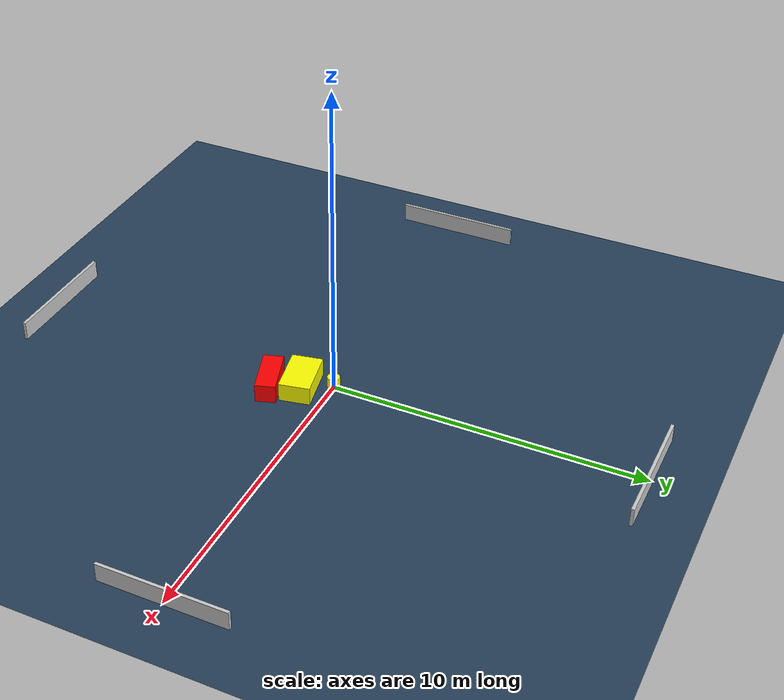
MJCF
<?xml version="1.0" ?>
<mujoco model="generated_environment">
  <option timestep="0.01" integrator="RK4" cone="elliptic"/>
  <default>
    <geom density="1"/>
  </default>
  <asset>
    <texture builtin="gradient" height="3072" name="skybox" rgb1="0.3 0.5 0.7" rgb2="0 0 0" type="skybox" width="512"/>
    <texture builtin="checker" height="300" name="groundplane" rgb1="0.2 0.3 0.4" rgb2="0.1 0.2 0.3" type="2d" width="300"/>
    <material name="groundplane" reflectance="0.2" texrepeat="5 5" texture="groundplane"/>
  </asset>
  <worldbody>
    <light dir="0 0 -1" directional="true" pos="0 0 1.5"/>
    <geom condim="3" friction="0.5 0.005 0.001" material="groundplane" name="floor" pos="0 0 0" size="0 0 0.05" type="plane"/>
    <body name="walls">
      <geom name="wall_1" condim="4" pos="-10.0 0.0 0.3" rgba="0.800000011920929 0.800000011920929 0.800000011920929 1.0" size="0.05 2.0 0.3" type="box"/>
      <geom name="wall_2" condim="4" pos="10.0 0.0 0.3" rgba="0.800000011920929 0.800000011920929 0.800000011920929 1.0" size="0.05 2.0 0.3" type="box"/>
      <geom name="wall_3" condim="4" pos="0.0 -10.0 0.3" rgba="0.800000011920929 0.800000011920929 0.800000011920929 1.0" size="2.0 0.05 0.3" type="box"/>
      <geom name="wall_4" condim="4" pos="0.0 10.0 0.3" rgba="0.800000011920929 0.800000011920929 0.800000011920929 1.0" size="2.0 0.05 0.3" type="box"/>
    </body>
    <body name="robot">
      <joint name="joint_x" type="slide" pos="0 0 0" axis="1 0 0"/>
      <joint name="joint_y" type="slide" pos="0 0 0" axis="0 1 0"/>
      <geom name="robot" type="cylinder" pos="0.0 0.0 0.2" size="0.2 0.2 0.0" mass="5.0" friction="1.0 0.005 0.0001" condim="4" rgba="1.0 1.0 0.0 1.0"/>
    </body>
    <body name="obstacle_1_movable">
      <geom name="obstacle_1_movable" condim="4" pos="0.43236737458132624 -0.9027628167690646 0.3" euler="0 0 191.17000898628928" friction="0.0 0.005 0.001" rgba="1.0 1.0 0.0 1.0" size="0.7757423376893902 0.4901692509500462 0.3" type="box" mass="0.1"/>
      <joint type="free"/>
    </body>
    <body name="obstacle_2_static">
      <geom name="obstacle_2_static" condim="4" pos="0.8095323360558885 -1.7882759394643344 0.3" euler="0 0 287.9354579981433" friction="0.0 0.005 0.001" rgba="1.0 0.0 0.0 1.0" size="0.3227926834658631 0.7785439174807756 0.3" type="box"/>
    </body>
  </worldbody>
  <actuator>
    <motor name="actuator_x" joint="joint_x" gear="1" ctrlrange="-1 1"/>
    <motor name="actuator_y" joint="joint_y" gear="1" ctrlrange="-1 1"/>
  </actuator>
</mujoco>
